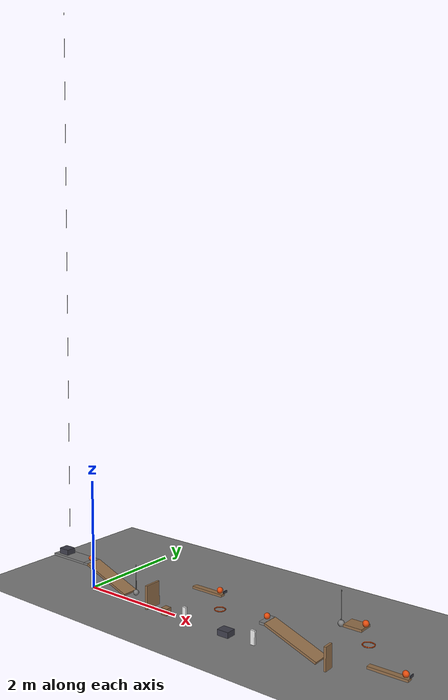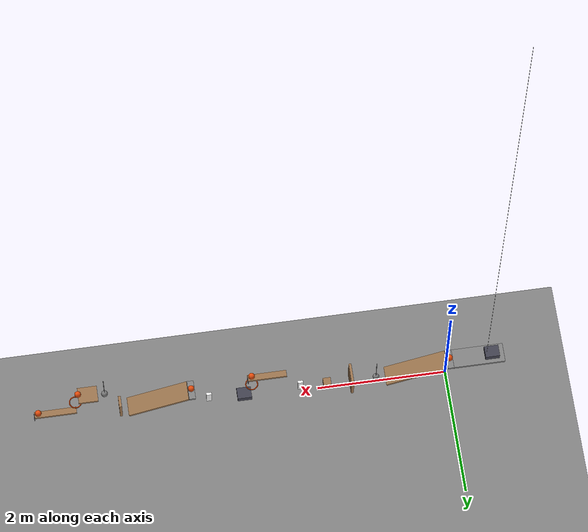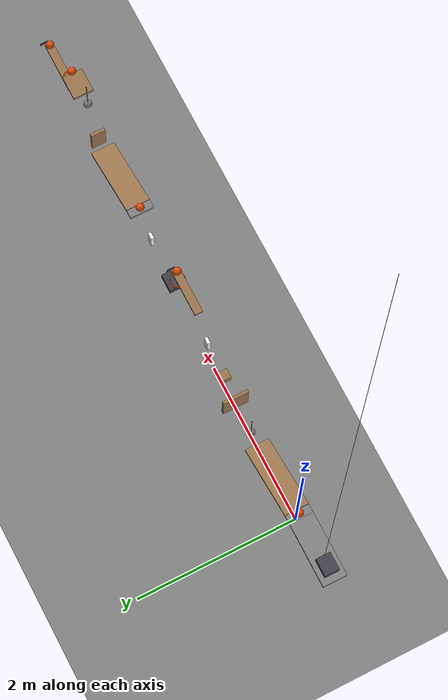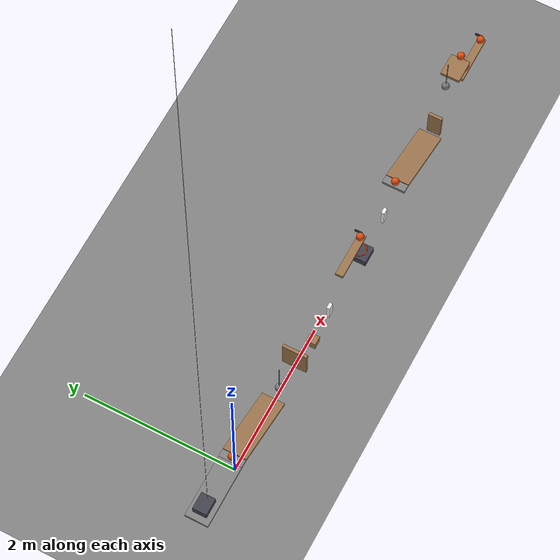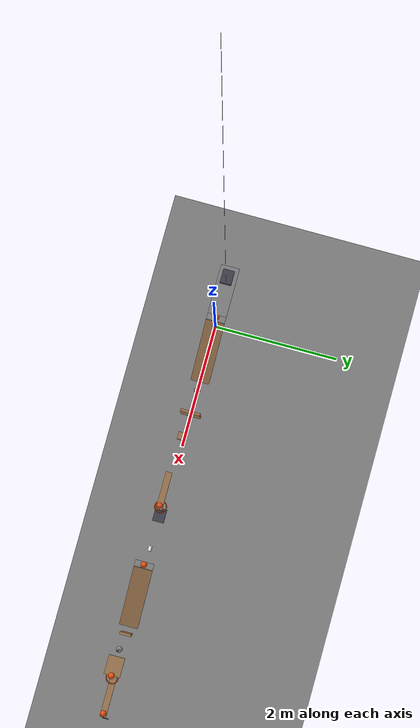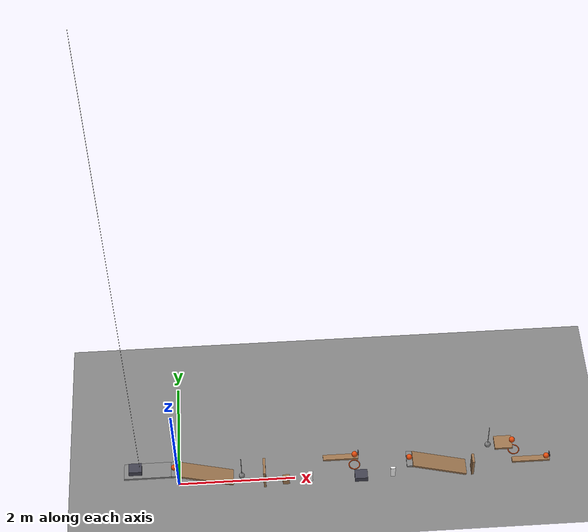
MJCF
<mujoco model="guarded_diagnostic_spring_and_gravity_chain">
  <compiler angle="radian"/>
  <option timestep="0.002"/>
  <worldbody>
    <geom name="floor" type="plane" size="20 20 0.1" friction="0.68 0 0"/>
    <body name="ramp1">
      <geom name="ramp1" type="box" pos="0.469847 0 0.302216" size="0.5 0.15 0.02" euler="0 0.349066 0" friction="0.68 0 0" solref="0.01 1" rgba="0.6 0.45 0.3 1"/>
    </body>
    <body name="ball1 starting platform">
      <geom name="ball1 starting platform" type="box" pos="-0.05 0 0.47202" size="0.05 0.15 0.02" friction="0.68 0 0" solref="0.01 1"/>
    </body>
    <body name="cart1 track">
      <geom name="cart1 track" type="box" pos="-0.5 0 0.47202" size="0.4 0.15 0.02" friction="0.68 0 0" solref="0.01 1"/>
    </body>
    <body name="cart1" pos="-0.71 0 0.54202">
      <freejoint/>
      <geom name="cart1" type="box" pos="0 0 0" size="0.11 0.09 0.05" mass="0.5" friction="0.68 0 0" solref="0.01 1" rgba="0.25 0.25 0.3 1"/>
    </body>
    <body name="cart1 spring pusher" pos="-0.63 0 10.542">
      <joint name="cart1_spring_hinge" type="hinge" pos="0 0 0" axis="0 1 0" limited="true" range="0 0.025" stiffness="1800" springref="0" damping="0.04"/>
      <geom name="cart1 spring pusher" type="sphere" pos="0 0 -10" size="0.01" mass="0.005" friction="0.68 0 0" solref="0.01 1"/>
      <geom name="cart1 spring arm" type="capsule" size="0.002" fromto="0 0 0 0 0 -9.99" mass="0.005" contype="0" conaffinity="0"/>
    </body>
    <body name="ball1" pos="-0.05 0 0.54202">
      <freejoint/>
      <geom name="ball1" type="sphere" pos="0 0 0" size="0.05" mass="0.2" condim="6" friction="0.68 0 0" solref="0.01 1" rgba="0.9 0.3 0.05 1"/>
    </body>
    <body name="pendulum1" pos="1.08969 0 0.675">
      <joint name="pendulum1_hinge" type="hinge" pos="0 0 0" axis="0 1 0" limited="true" range="-0.698132 0" damping="0.04"/>
      <geom name="pendulum1" type="sphere" pos="0 0 -0.5" size="0.05" mass="0.34" friction="0.68 0 0" solref="0.01 1"/>
      <geom name="pendulum1 rod" type="capsule" size="0.005" fromto="0 0 0 0 0 -0.45" mass="0.01" friction="0.68 0 0" solref="0.01 1"/>
    </body>
    <body name="door1" pos="1.48109 -0.16 0.23">
      <joint name="door1_hinge" type="hinge" pos="0 0 0" axis="0 0 1" limited="true" range="-1.22173 0" damping="0.04"/>
      <geom name="door1" type="box" pos="0 0.16 0" size="0.02 0.16 0.21" mass="0.45" friction="0.68 0 0" solref="0.01 1" rgba="0.6 0.45 0.3 1"/>
    </body>
    <body name="block1" pos="1.84863 -0.050553 0.06">
      <freejoint/>
      <geom name="block1" type="box" pos="0 0 0" size="0.06 0.06 0.06" mass="0.35" friction="0.68 0 0" solref="0.01 1" rgba="0.6 0.45 0.3 1"/>
    </body>
    <body name="domino1" pos="2.26863 -0.050553 0.12">
      <freejoint/>
      <geom name="domino1" type="box" pos="0 0 0" size="0.04 0.02 0.12" mass="0.25" friction="0.68 0 0" solref="0.01 1" rgba="0.95 0.95 0.95 1"/>
    </body>
    <body name="lever1" pos="2.78863 -0.050553 0.65">
      <joint name="lever1_hinge" type="hinge" pos="0 0 0" axis="0 1 0" limited="true" range="-0.785398 0" damping="0.04"/>
      <geom name="lever1" type="box" pos="0 0 0" size="0.3 0.05 0.02" mass="0.5" friction="0.68 0 0" solref="0.01 1" rgba="0.6 0.45 0.3 1"/>
    </body>
    <body name="lever1 ball guard">
      <geom name="lever1 ball guard" type="box" pos="3.09363 0 0.69" size="0.005 0.05 0.02" friction="0.68 0 0" solref="0.01 1" rgba="0.25 0.25 0.3 1"/>
    </body>
    <body name="ball2" pos="3.02863 -0.050553 0.72">
      <freejoint/>
      <geom name="ball2" type="sphere" pos="0 0 0" size="0.05" mass="0.2" condim="6" friction="0.68 0 0" solref="0.01 1" rgba="0.9 0.3 0.05 1"/>
    </body>
    <body name="ring1">
      <geom name="ring1_00" type="capsule" size="0.008" fromto="3.12063 -0.050553 0.4 3.11363 -0.0153461 0.4" friction="0.68 0 0" solref="0.01 1" rgba="0.9 0.3 0.05 1"/>
      <geom name="ring1_01" type="capsule" size="0.008" fromto="3.11363 -0.0153461 0.4 3.09368 0.0145008 0.4" friction="0.68 0 0" solref="0.01 1" rgba="0.9 0.3 0.05 1"/>
      <geom name="ring1_02" type="capsule" size="0.008" fromto="3.09368 0.0145008 0.4 3.06384 0.0344439 0.4" friction="0.68 0 0" solref="0.01 1" rgba="0.9 0.3 0.05 1"/>
      <geom name="ring1_03" type="capsule" size="0.008" fromto="3.06384 0.0344439 0.4 3.02863 0.041447 0.4" friction="0.68 0 0" solref="0.01 1" rgba="0.9 0.3 0.05 1"/>
      <geom name="ring1_04" type="capsule" size="0.008" fromto="3.02863 0.041447 0.4 2.99342 0.0344439 0.4" friction="0.68 0 0" solref="0.01 1" rgba="0.9 0.3 0.05 1"/>
      <geom name="ring1_05" type="capsule" size="0.008" fromto="2.99342 0.0344439 0.4 2.96358 0.0145008 0.4" friction="0.68 0 0" solref="0.01 1" rgba="0.9 0.3 0.05 1"/>
      <geom name="ring1_06" type="capsule" size="0.008" fromto="2.96358 0.0145008 0.4 2.94363 -0.0153461 0.4" friction="0.68 0 0" solref="0.01 1" rgba="0.9 0.3 0.05 1"/>
      <geom name="ring1_07" type="capsule" size="0.008" fromto="2.94363 -0.0153461 0.4 2.93663 -0.050553 0.4" friction="0.68 0 0" solref="0.01 1" rgba="0.9 0.3 0.05 1"/>
      <geom name="ring1_08" type="capsule" size="0.008" fromto="2.93663 -0.050553 0.4 2.94363 -0.0857599 0.4" friction="0.68 0 0" solref="0.01 1" rgba="0.9 0.3 0.05 1"/>
      <geom name="ring1_09" type="capsule" size="0.008" fromto="2.94363 -0.0857599 0.4 2.96358 -0.115607 0.4" friction="0.68 0 0" solref="0.01 1" rgba="0.9 0.3 0.05 1"/>
      <geom name="ring1_10" type="capsule" size="0.008" fromto="2.96358 -0.115607 0.4 2.99342 -0.13555 0.4" friction="0.68 0 0" solref="0.01 1" rgba="0.9 0.3 0.05 1"/>
      <geom name="ring1_11" type="capsule" size="0.008" fromto="2.99342 -0.13555 0.4 3.02863 -0.142553 0.4" friction="0.68 0 0" solref="0.01 1" rgba="0.9 0.3 0.05 1"/>
      <geom name="ring1_12" type="capsule" size="0.008" fromto="3.02863 -0.142553 0.4 3.06384 -0.13555 0.4" friction="0.68 0 0" solref="0.01 1" rgba="0.9 0.3 0.05 1"/>
      <geom name="ring1_13" type="capsule" size="0.008" fromto="3.06384 -0.13555 0.4 3.09368 -0.115607 0.4" friction="0.68 0 0" solref="0.01 1" rgba="0.9 0.3 0.05 1"/>
      <geom name="ring1_14" type="capsule" size="0.008" fromto="3.09368 -0.115607 0.4 3.11363 -0.0857599 0.4" friction="0.68 0 0" solref="0.01 1" rgba="0.9 0.3 0.05 1"/>
      <geom name="ring1_15" type="capsule" size="0.008" fromto="3.11363 -0.0857599 0.4 3.12063 -0.050553 0.4" friction="0.68 0 0" solref="0.01 1" rgba="0.9 0.3 0.05 1"/>
    </body>
    <body name="cart2" pos="3.14863 -0.050553 0.05">
      <freejoint/>
      <geom name="cart2" type="box" pos="0 0 0" size="0.11 0.09 0.05" mass="0.5" friction="0.68 0 0" solref="0.01 1" rgba="0.25 0.25 0.3 1"/>
    </body>
    <body name="domino2" pos="3.69863 -0.050553 0.12">
      <freejoint/>
      <geom name="domino2" type="box" pos="0 0 0" size="0.04 0.02 0.12" mass="0.25" friction="0.68 0 0" solref="0.01 1" rgba="0.95 0.95 0.95 1"/>
    </body>
    <body name="ball3 starting platform">
      <geom name="ball3 starting platform" type="box" pos="3.96863 -0.050553 0.47202" size="0.05 0.15 0.02" friction="0.68 0 0" solref="0.01 1"/>
    </body>
    <body name="ramp2">
      <geom name="ramp2" type="box" pos="4.48848 -0.050553 0.302216" size="0.5 0.15 0.02" euler="0 0.349066 0" friction="0.68 0 0" solref="0.01 1" rgba="0.6 0.45 0.3 1"/>
    </body>
    <body name="ball3" pos="3.96863 -0.050553 0.54202">
      <freejoint/>
      <geom name="ball3" type="sphere" pos="0 0 0" size="0.05" mass="0.2" condim="6" friction="0.68 0 0" solref="0.01 1" rgba="0.9 0.3 0.05 1"/>
    </body>
    <body name="flap1" pos="5.07832 -0.140553 0.21">
      <joint name="flap1_hinge" type="hinge" pos="0 0 0" axis="0 0 1" limited="true" range="-1.0472 0" damping="0.04"/>
      <geom name="flap1" type="box" pos="0 0.09 -2.77556e-17" size="0.02 0.09 0.19" mass="0.28" friction="0.68 0 0" solref="0.01 1" rgba="0.6 0.45 0.3 1"/>
    </body>
    <body name="pendulum2" pos="5.29832 -0.050553 1.29401">
      <joint name="pendulum2_hinge" type="hinge" pos="0 0 0" axis="0 1 0" limited="true" range="-0.663225 0" damping="0.04"/>
      <geom name="pendulum2" type="sphere" pos="0 0 -0.5" size="0.05" mass="0.34" friction="0.68 0 0" solref="0.01 1"/>
      <geom name="pendulum2 rod" type="capsule" size="0.005" fromto="0 0 0 0 0 -0.45" mass="0.01" friction="0.68 0 0" solref="0.01 1"/>
    </body>
    <body name="shelf1">
      <geom name="shelf1" type="box" pos="5.55615 -0.050553 0.83" size="0.15 0.125 0.02" friction="0.68 0 0" solref="0.01 1" rgba="0.6 0.45 0.3 1"/>
    </body>
    <body name="ball4" pos="5.70615 -0.050553 0.9">
      <freejoint/>
      <geom name="ball4" type="sphere" pos="0 0 0" size="0.05" mass="0.2" condim="6" friction="0.68 0 0" solref="0.01 1" rgba="0.9 0.3 0.05 1"/>
    </body>
    <body name="ring2">
      <geom name="ring2_00" type="capsule" size="0.008" fromto="5.84815 -0.050553 0.6 5.84115 -0.0153461 0.6" friction="0.68 0 0" solref="0.01 1" rgba="0.9 0.3 0.05 1"/>
      <geom name="ring2_01" type="capsule" size="0.008" fromto="5.84115 -0.0153461 0.6 5.82121 0.0145008 0.6" friction="0.68 0 0" solref="0.01 1" rgba="0.9 0.3 0.05 1"/>
      <geom name="ring2_02" type="capsule" size="0.008" fromto="5.82121 0.0145008 0.6 5.79136 0.0344439 0.6" friction="0.68 0 0" solref="0.01 1" rgba="0.9 0.3 0.05 1"/>
      <geom name="ring2_03" type="capsule" size="0.008" fromto="5.79136 0.0344439 0.6 5.75615 0.041447 0.6" friction="0.68 0 0" solref="0.01 1" rgba="0.9 0.3 0.05 1"/>
      <geom name="ring2_04" type="capsule" size="0.008" fromto="5.75615 0.041447 0.6 5.72095 0.0344439 0.6" friction="0.68 0 0" solref="0.01 1" rgba="0.9 0.3 0.05 1"/>
      <geom name="ring2_05" type="capsule" size="0.008" fromto="5.72095 0.0344439 0.6 5.6911 0.0145008 0.6" friction="0.68 0 0" solref="0.01 1" rgba="0.9 0.3 0.05 1"/>
      <geom name="ring2_06" type="capsule" size="0.008" fromto="5.6911 0.0145008 0.6 5.67116 -0.0153461 0.6" friction="0.68 0 0" solref="0.01 1" rgba="0.9 0.3 0.05 1"/>
      <geom name="ring2_07" type="capsule" size="0.008" fromto="5.67116 -0.0153461 0.6 5.66415 -0.050553 0.6" friction="0.68 0 0" solref="0.01 1" rgba="0.9 0.3 0.05 1"/>
      <geom name="ring2_08" type="capsule" size="0.008" fromto="5.66415 -0.050553 0.6 5.67116 -0.0857599 0.6" friction="0.68 0 0" solref="0.01 1" rgba="0.9 0.3 0.05 1"/>
      <geom name="ring2_09" type="capsule" size="0.008" fromto="5.67116 -0.0857599 0.6 5.6911 -0.115607 0.6" friction="0.68 0 0" solref="0.01 1" rgba="0.9 0.3 0.05 1"/>
      <geom name="ring2_10" type="capsule" size="0.008" fromto="5.6911 -0.115607 0.6 5.72095 -0.13555 0.6" friction="0.68 0 0" solref="0.01 1" rgba="0.9 0.3 0.05 1"/>
      <geom name="ring2_11" type="capsule" size="0.008" fromto="5.72095 -0.13555 0.6 5.75615 -0.142553 0.6" friction="0.68 0 0" solref="0.01 1" rgba="0.9 0.3 0.05 1"/>
      <geom name="ring2_12" type="capsule" size="0.008" fromto="5.75615 -0.142553 0.6 5.79136 -0.13555 0.6" friction="0.68 0 0" solref="0.01 1" rgba="0.9 0.3 0.05 1"/>
      <geom name="ring2_13" type="capsule" size="0.008" fromto="5.79136 -0.13555 0.6 5.82121 -0.115607 0.6" friction="0.68 0 0" solref="0.01 1" rgba="0.9 0.3 0.05 1"/>
      <geom name="ring2_14" type="capsule" size="0.008" fromto="5.82121 -0.115607 0.6 5.84115 -0.0857599 0.6" friction="0.68 0 0" solref="0.01 1" rgba="0.9 0.3 0.05 1"/>
      <geom name="ring2_15" type="capsule" size="0.008" fromto="5.84115 -0.0857599 0.6 5.84815 -0.050553 0.6" friction="0.68 0 0" solref="0.01 1" rgba="0.9 0.3 0.05 1"/>
    </body>
    <body name="seesaw1" pos="6.08115 -0.050553 0.28">
      <joint name="seesaw1_hinge" type="hinge" pos="0 0 0" axis="0 1 0" limited="true" range="-0.733038 0" damping="0.04"/>
      <geom name="seesaw1" type="box" pos="0 0 0" size="0.325 0.05 0.02" mass="0.55" friction="0.68 0 0" solref="0.01 1" rgba="0.6 0.45 0.3 1"/>
    </body>
    <body name="seesaw1 ball guard">
      <geom name="seesaw1 ball guard" type="box" pos="6.41115 0 0.32" size="0.005 0.05 0.02" friction="0.68 0 0" solref="0.01 1" rgba="0.25 0.25 0.3 1"/>
    </body>
    <body name="ball5" pos="6.34615 -0.050553 0.35">
      <freejoint/>
      <geom name="ball5" type="sphere" pos="0 0 0" size="0.05" mass="0.2" condim="6" friction="0.68 0 0" solref="0.01 1" rgba="0.9 0.3 0.05 1"/>
    </body>
  </worldbody>
  <keyframe>
    <key name="start" qpos="-0.71 0 0.54202 1 0 0 0 0.02 -0.05 0 0.54202 1 0 0 0 0 0 1.84863 -0.050553 0.06 1 0 0 0 2.26863 -0.050553 0.12 1 0 0 0 0 3.02863 -0.050553 0.72 1 0 0 0 3.14863 -0.050553 0.05 1 0 0 0 3.69863 -0.050553 0.12 1 0 0 0 3.96863 -0.050553 0.54202 1 0 0 0 0 0 5.70615 -0.050553 0.9 1 0 0 0 0 6.34615 -0.050553 0.35 1 0 0 0" qvel="0 0 0 0 0 0 0 0 0 0 0 0 0 0 0 0 0 0 0 0 0 0 0 0 0 0 0 0 0 0 0 0 0 0 0 0 0 0 0 0 0 0 0 0 0 0 0 0 0 0 0 0 0 0 0 0 0 0 0 0 0 0 0 0 0 0 0"/>
  </keyframe>
</mujoco>
